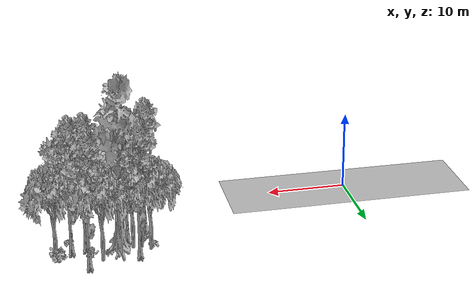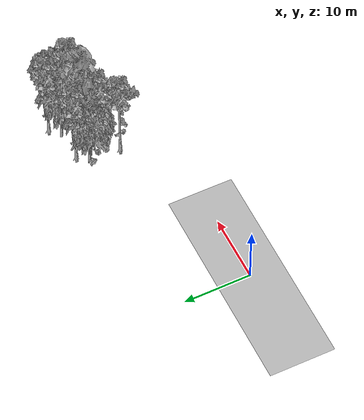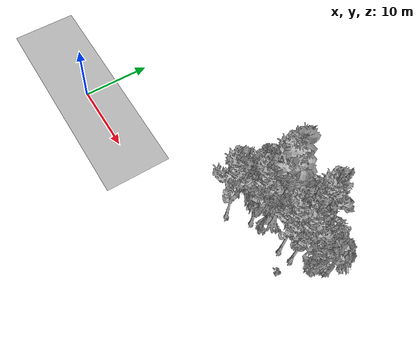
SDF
<sdf version="1.7">
 <world name="default">
  <model name="ground_plane">
   <static>1</static>
   <link name="link">
    <collision name="collision">
     <geometry><plane><normal>0 0 1</normal><size>100 100</size></plane></geometry>
     <surface><contact><ode><min_depth>0.01</min_depth><max_vel>0</max_vel></ode></contact></surface>
    </collision>
    <visual name="grass">
     <cast_shadows>0</cast_shadows>
     <geometry>
      <mesh>
       <scale>0.5814285714285714 0.18142857142857144 0.1</scale>
       <uri>file://grass_plane/meshes/grass_plane.dae</uri>
      </mesh>
     </geometry>
    </visual>
   </link>
  </model>
  <model name="Tree 10">
   <static>1</static>
   <pose>26.99071619698111 11.742982170944806 0 1.57079 -0 0</pose>
   <link name="link">
    <collision name="collision">
     <geometry><mesh><scale>3.5 5 3.5</scale><uri>model://tree_2/meshes/tree_2.obj</uri></mesh></geometry>
    </collision>
    <visual name="visual">
     <geometry><mesh><scale>3.5 5 3.5</scale><uri>model://tree_2/meshes/tree_2.obj</uri></mesh></geometry>
    </visual>
   </link>
  </model>
  <model name="Tree 40">
   <static>1</static>
   <pose>30.653771378390744 11.485021905221021 0 1.57079 -0 0</pose>
   <link name="link">
    <collision name="collision">
     <geometry><mesh><scale>3.5 5 3.5</scale><uri>model://tree_4/meshes/tree_4.obj</uri></mesh></geometry>
    </collision>
    <visual name="visual">
     <geometry><mesh><scale>3.5 5 3.5</scale><uri>model://tree_4/meshes/tree_4.obj</uri></mesh></geometry>
    </visual>
   </link>
  </model>
  <model name="Tree 88">
   <static>1</static>
   <pose>29.575374817034543 9.222812956155561 0 1.57079 -0 0</pose>
   <link name="link">
    <collision name="collision">
     <geometry><mesh><scale>3.5 5 3.5</scale><uri>model://tree_9/meshes/tree_9.obj</uri></mesh></geometry>
    </collision>
    <visual name="visual">
     <geometry><mesh><scale>3.5 5 3.5</scale><uri>model://tree_9/meshes/tree_9.obj</uri></mesh></geometry>
    </visual>
   </link>
  </model>
  <model name="Tree 97">
   <static>1</static>
   <pose>34.61985473136322 10.029466717275017 0 1.57079 -0 0</pose>
   <link name="link">
    <collision name="collision">
     <geometry><mesh><scale>3.5 5 3.5</scale><uri>model://tree_9/meshes/tree_9.obj</uri></mesh></geometry>
    </collision>
    <visual name="visual">
     <geometry><mesh><scale>3.5 5 3.5</scale><uri>model://tree_9/meshes/tree_9.obj</uri></mesh></geometry>
    </visual>
   </link>
  </model>
  <model name="Tree 184">
   <static>1</static>
   <pose>32.83736647822532 13.383114143451543 0 1.57079 -0 0</pose>
   <link name="link">
    <collision name="collision">
     <geometry><mesh><scale>3.5 5 3.5</scale><uri>model://tree_2/meshes/tree_2.obj</uri></mesh></geometry>
    </collision>
    <visual name="visual">
     <geometry><mesh><scale>3.5 5 3.5</scale><uri>model://tree_2/meshes/tree_2.obj</uri></mesh></geometry>
    </visual>
   </link>
  </model>
  <model name="Tree 277">
   <static>1</static>
   <pose>28.57621227430755 13.100965019431978 0 1.57079 -0 0</pose>
   <link name="link">
    <collision name="collision">
     <geometry><mesh><scale>3.5 5 3.5</scale><uri>model://tree_9/meshes/tree_9.obj</uri></mesh></geometry>
    </collision>
    <visual name="visual">
     <geometry><mesh><scale>3.5 5 3.5</scale><uri>model://tree_9/meshes/tree_9.obj</uri></mesh></geometry>
    </visual>
   </link>
  </model>
  <model name="Tree 282">
   <static>1</static>
   <pose>27.136829850482343 6.912940520745185 0 1.57079 -0 0</pose>
   <link name="link">
    <collision name="collision">
     <geometry><mesh><scale>3.5 5 3.5</scale><uri>model://tree_9/meshes/tree_9.obj</uri></mesh></geometry>
    </collision>
    <visual name="visual">
     <geometry><mesh><scale>3.5 5 3.5</scale><uri>model://tree_9/meshes/tree_9.obj</uri></mesh></geometry>
    </visual>
   </link>
  </model>
  <model name="Tree 317">
   <static>1</static>
   <pose>28.010763997983773 11.046965112879434 0 1.57079 -0 0</pose>
   <link name="link">
    <collision name="collision">
     <geometry><mesh><scale>3.5 5 3.5</scale><uri>model://tree_2/meshes/tree_2.obj</uri></mesh></geometry>
    </collision>
    <visual name="visual">
     <geometry><mesh><scale>3.5 5 3.5</scale><uri>model://tree_2/meshes/tree_2.obj</uri></mesh></geometry>
    </visual>
   </link>
  </model>
  <model name="Tree 334">
   <static>1</static>
   <pose>29.020738015305724 10.960873280281128 0 1.57079 -0 0</pose>
   <link name="link">
    <collision name="collision">
     <geometry><mesh><scale>3.5 5 3.5</scale><uri>model://tree_2/meshes/tree_2.obj</uri></mesh></geometry>
    </collision>
    <visual name="visual">
     <geometry><mesh><scale>3.5 5 3.5</scale><uri>model://tree_2/meshes/tree_2.obj</uri></mesh></geometry>
    </visual>
   </link>
  </model>
  <model name="Tree 385">
   <static>1</static>
   <pose>36.34442328685054 10.534472472091476 0 1.57079 -0 0</pose>
   <link name="link">
    <collision name="collision">
     <geometry><mesh><scale>3.5 5 3.5</scale><uri>model://tree_9/meshes/tree_9.obj</uri></mesh></geometry>
    </collision>
    <visual name="visual">
     <geometry><mesh><scale>3.5 5 3.5</scale><uri>model://tree_9/meshes/tree_9.obj</uri></mesh></geometry>
    </visual>
   </link>
  </model>
  <model name="Tree 387">
   <static>1</static>
   <pose>34.62589102446931 14.625724062944432 0 1.57079 -0 0</pose>
   <link name="link">
    <collision name="collision">
     <geometry><mesh><scale>3.5 5 3.5</scale><uri>model://tree_9/meshes/tree_9.obj</uri></mesh></geometry>
    </collision>
    <visual name="visual">
     <geometry><mesh><scale>3.5 5 3.5</scale><uri>model://tree_9/meshes/tree_9.obj</uri></mesh></geometry>
    </visual>
   </link>
  </model>
  <model name="Tree 399">
   <static>1</static>
   <pose>38.20077936702887 12.12017360282995 0 1.57079 -0 0</pose>
   <link name="link">
    <collision name="collision">
     <geometry><mesh><scale>3.5 5 3.5</scale><uri>model://tree_2/meshes/tree_2.obj</uri></mesh></geometry>
    </collision>
    <visual name="visual">
     <geometry><mesh><scale>3.5 5 3.5</scale><uri>model://tree_2/meshes/tree_2.obj</uri></mesh></geometry>
    </visual>
   </link>
  </model>
  <model name="Bush 15">
   <static>1</static>
   <pose>27.781908378391208 10.1696148798497 0 1.57079 -0 0</pose>
   <link name="link">
    <collision name="collision">
     <geometry><mesh><scale>2 2 2</scale><uri>model://bush_0/meshes/bush_0.obj</uri></mesh></geometry>
     <surface><contact><collide_without_contact>false</collide_without_contact></contact></surface>
    </collision>
    <visual name="visual">
     <geometry><mesh><scale>2 2 2</scale><uri>model://bush_0/meshes/bush_0.obj</uri></mesh></geometry>
    </visual>
   </link>
  </model>
  <model name="Bush 26">
   <static>1</static>
   <pose>36.552172525465664 8.236935023141786 0 1.57079 -0 0</pose>
   <link name="link">
    <collision name="collision">
     <geometry><mesh><scale>2 2 2</scale><uri>model://bush_2/meshes/bush_2.obj</uri></mesh></geometry>
     <surface><contact><collide_without_contact>false</collide_without_contact></contact></surface>
    </collision>
    <visual name="visual">
     <geometry><mesh><scale>2 2 2</scale><uri>model://bush_2/meshes/bush_2.obj</uri></mesh></geometry>
    </visual>
   </link>
  </model>
  <model name="Bush 60">
   <static>1</static>
   <pose>30.771500708493008 9.484812151773124 0 1.57079 -0 0</pose>
   <link name="link">
    <collision name="collision">
     <geometry><mesh><scale>2 2 2</scale><uri>model://bush_4/meshes/bush_4.obj</uri></mesh></geometry>
     <surface><contact><collide_without_contact>false</collide_without_contact></contact></surface>
    </collision>
    <visual name="visual">
     <geometry><mesh><scale>2 2 2</scale><uri>model://bush_4/meshes/bush_4.obj</uri></mesh></geometry>
    </visual>
   </link>
  </model>
  <model name="Bush 147">
   <static>1</static>
   <pose>31.990611141596958 11.629105826167493 0 1.57079 -0 0</pose>
   <link name="link">
    <collision name="collision">
     <geometry><mesh><scale>2 2 2</scale><uri>model://bush_2/meshes/bush_2.obj</uri></mesh></geometry>
     <surface><contact><collide_without_contact>false</collide_without_contact></contact></surface>
    </collision>
    <visual name="visual">
     <geometry><mesh><scale>2 2 2</scale><uri>model://bush_2/meshes/bush_2.obj</uri></mesh></geometry>
    </visual>
   </link>
  </model>
  <model name="Bush 213">
   <static>1</static>
   <pose>34.096119740671554 12.423983481401258 0 1.57079 -0 0</pose>
   <link name="link">
    <collision name="collision">
     <geometry><mesh><scale>2 2 2</scale><uri>model://bush_4/meshes/bush_4.obj</uri></mesh></geometry>
     <surface><contact><collide_without_contact>false</collide_without_contact></contact></surface>
    </collision>
    <visual name="visual">
     <geometry><mesh><scale>2 2 2</scale><uri>model://bush_4/meshes/bush_4.obj</uri></mesh></geometry>
    </visual>
   </link>
  </model>
  <model name="Bush 238">
   <static>1</static>
   <pose>37.981374289831905 12.923054033270837 0 1.57079 -0 0</pose>
   <link name="link">
    <collision name="collision">
     <geometry><mesh><scale>2 2 2</scale><uri>model://bush_1/meshes/bush_1.obj</uri></mesh></geometry>
     <surface><contact><collide_without_contact>false</collide_without_contact></contact></surface>
    </collision>
    <visual name="visual">
     <geometry><mesh><scale>2 2 2</scale><uri>model://bush_1/meshes/bush_1.obj</uri></mesh></geometry>
    </visual>
   </link>
  </model>
  <model name="Bush 291">
   <static>1</static>
   <pose>37.77417747827113 12.520047122512622 0 1.57079 -0 0</pose>
   <link name="link">
    <collision name="collision">
     <geometry><mesh><scale>2 2 2</scale><uri>model://bush_5/meshes/bush_5.obj</uri></mesh></geometry>
     <surface><contact><collide_without_contact>false</collide_without_contact></contact></surface>
    </collision>
    <visual name="visual">
     <geometry><mesh><scale>2 2 2</scale><uri>model://bush_5/meshes/bush_5.obj</uri></mesh></geometry>
    </visual>
   </link>
  </model>
  <model name="Bush 293">
   <static>1</static>
   <pose>38.56059770522495 11.964855011088716 0 1.57079 -0 0</pose>
   <link name="link">
    <collision name="collision">
     <geometry><mesh><scale>2 2 2</scale><uri>model://bush_0/meshes/bush_0.obj</uri></mesh></geometry>
     <surface><contact><collide_without_contact>false</collide_without_contact></contact></surface>
    </collision>
    <visual name="visual">
     <geometry><mesh><scale>2 2 2</scale><uri>model://bush_0/meshes/bush_0.obj</uri></mesh></geometry>
    </visual>
   </link>
  </model>
  <model name="Bush 304">
   <static>1</static>
   <pose>31.233472941331215 9.782196185981732 0 1.57079 -0 0</pose>
   <link name="link">
    <collision name="collision">
     <geometry><mesh><scale>2 2 2</scale><uri>model://bush_3/meshes/bush_3.obj</uri></mesh></geometry>
     <surface><contact><collide_without_contact>false</collide_without_contact></contact></surface>
    </collision>
    <visual name="visual">
     <geometry><mesh><scale>2 2 2</scale><uri>model://bush_3/meshes/bush_3.obj</uri></mesh></geometry>
    </visual>
   </link>
  </model>
  <model name="Bush 307">
   <static>1</static>
   <pose>26.808015729827687 11.433933029674556 0 1.57079 -0 0</pose>
   <link name="link">
    <collision name="collision">
     <geometry><mesh><scale>2 2 2</scale><uri>model://bush_3/meshes/bush_3.obj</uri></mesh></geometry>
     <surface><contact><collide_without_contact>false</collide_without_contact></contact></surface>
    </collision>
    <visual name="visual">
     <geometry><mesh><scale>2 2 2</scale><uri>model://bush_3/meshes/bush_3.obj</uri></mesh></geometry>
    </visual>
   </link>
  </model>
 </world>
</sdf>
